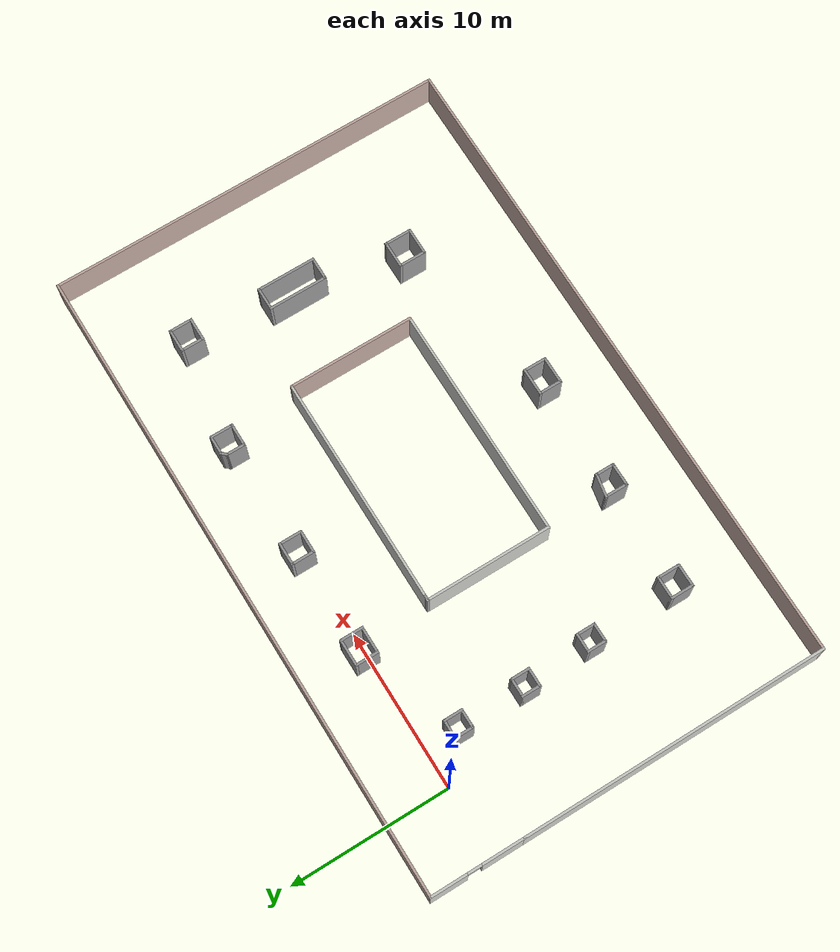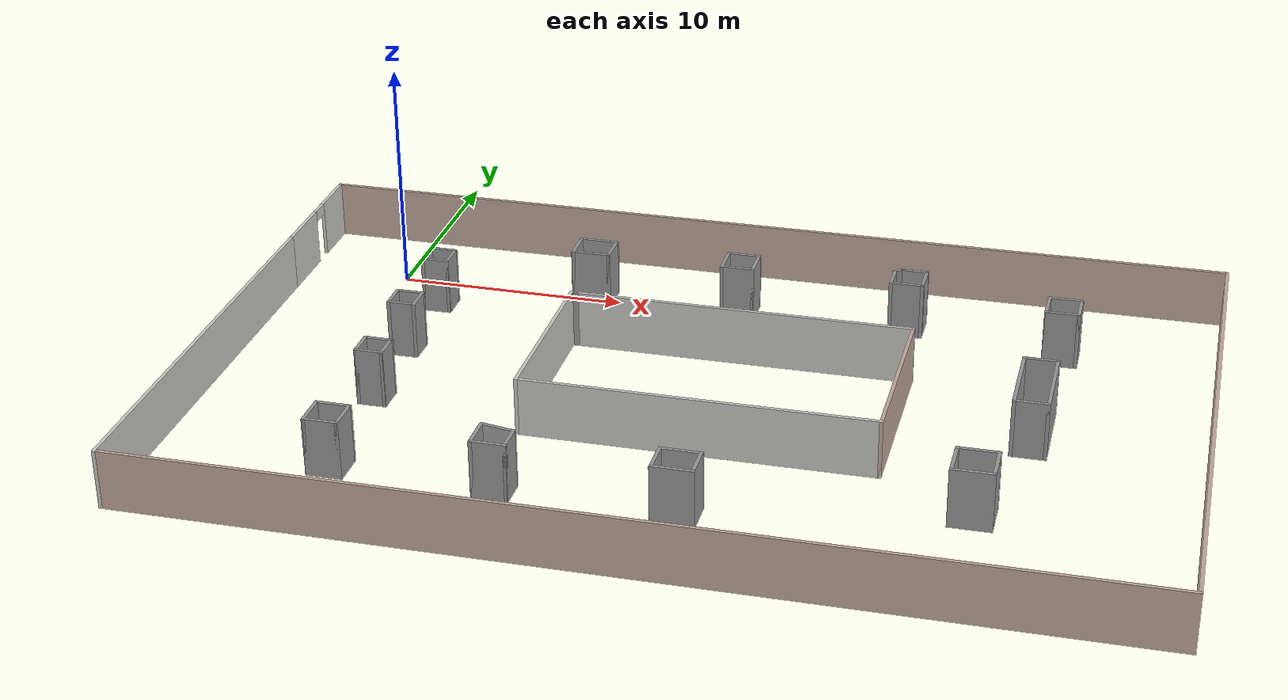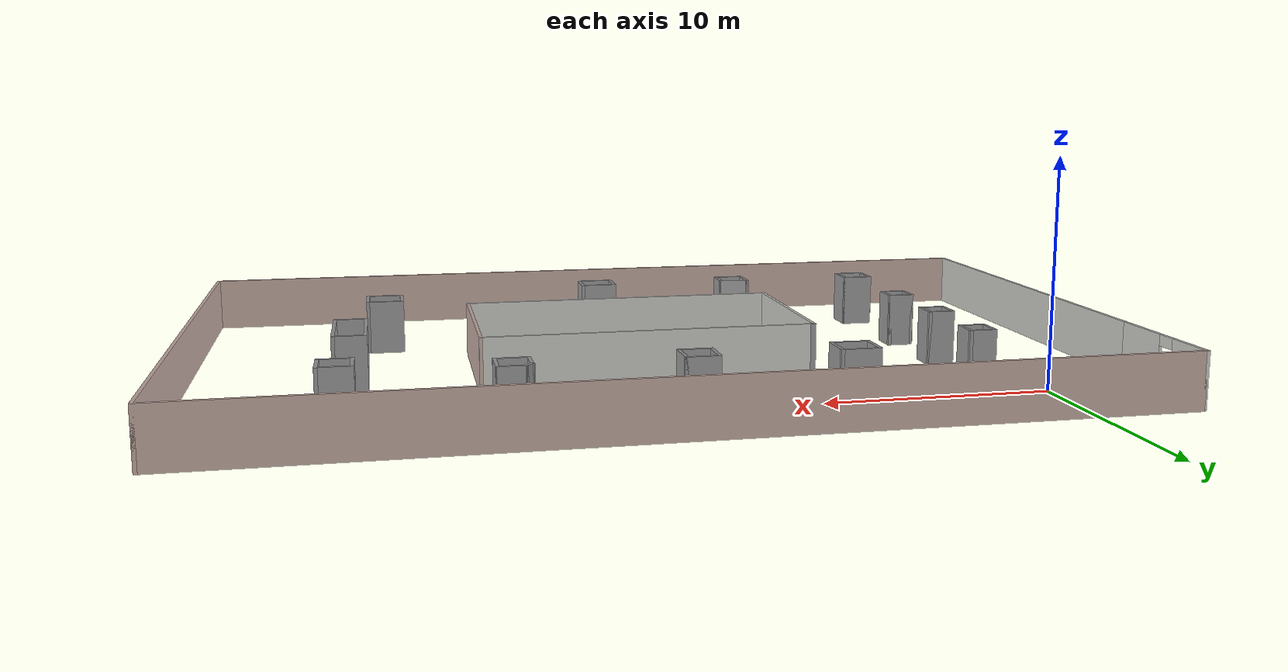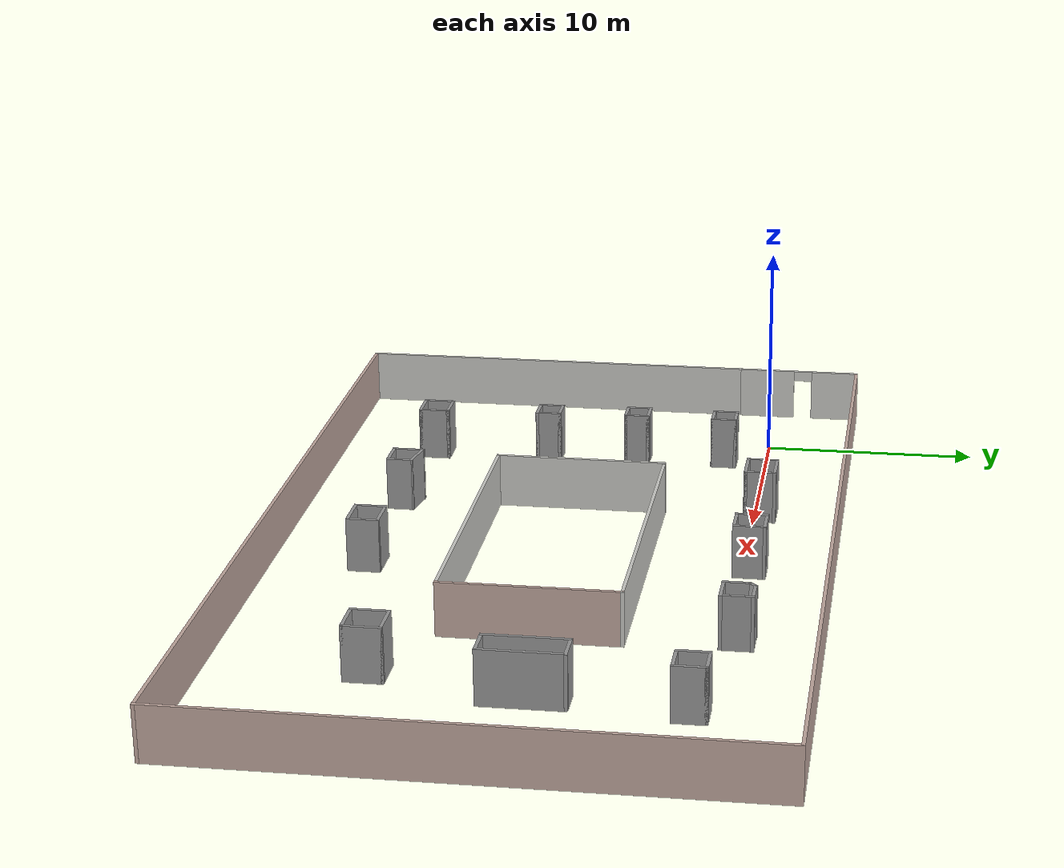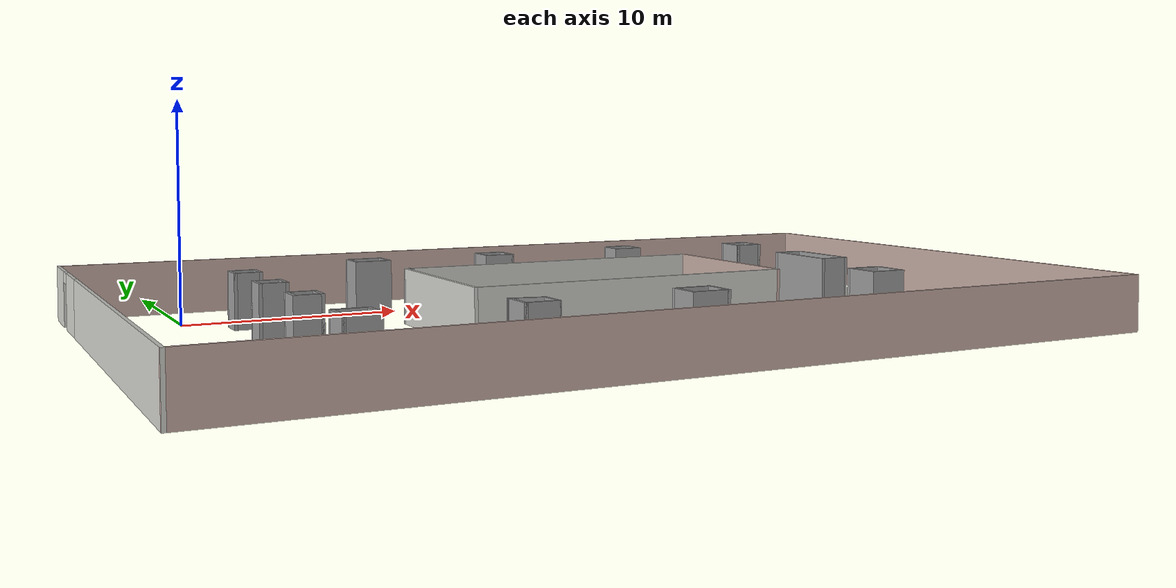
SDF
<?xml version='1.0'?>
<sdf version='1.7'>
  <model name='office'>
    <pose>15.7026 -8.49521 0 0 -0 0</pose>
    <link name='Wall_1'>
      <pose>-20.3 9.625 0 0 -0 1.5708</pose>
      <visual name='Wall_1_Visual_0'>
        <pose>-1.62865 0 1.25 0 -0 0</pose>
        <geometry>
          <box>
            <size>2.7427 0.15 2.5</size>
          </box>
        </geometry>
        <material>
          <script>
            <uri>file://media/materials/scripts/gazebo.material</uri>
            <name>Gazebo/CeilingTiled</name>
          </script>
          <ambient>0.760784 0.662745 0.627451 1</ambient>
        </material>
        <meta>
          <layer>0</layer>
        </meta>
      </visual>
      <collision name='Wall_1_Collision_0'>
        <geometry>
          <box>
            <size>2.7427 0.15 2.5</size>
          </box>
        </geometry>
        <pose>-1.62865 0 1.25 0 -0 0</pose>
      </collision>
      <visual name='Wall_1_Visual_1'>
        <pose>1.82135 0 1.25 0 -0 0</pose>
        <geometry>
          <box>
            <size>2.3573 0.15 2.5</size>
          </box>
        </geometry>
        <material>
          <script>
            <uri>file://media/materials/scripts/gazebo.material</uri>
            <name>Gazebo/CeilingTiled</name>
          </script>
          <ambient>0.760784 0.662745 0.627451 1</ambient>
        </material>
        <meta>
          <layer>0</layer>
        </meta>
      </visual>
      <collision name='Wall_1_Collision_1'>
        <geometry>
          <box>
            <size>2.3573 0.15 2.5</size>
          </box>
        </geometry>
        <pose>1.82135 0 1.25 0 -0 0</pose>
      </collision>
      <visual name='Wall_1_Visual_2'>
        <pose>0.192696 0 2.25 0 -0 0</pose>
        <geometry>
          <box>
            <size>0.9 0.15 0.5</size>
          </box>
        </geometry>
        <material>
          <script>
            <uri>file://media/materials/scripts/gazebo.material</uri>
            <name>Gazebo/CeilingTiled</name>
          </script>
          <ambient>0.760784 0.662745 0.627451 1</ambient>
        </material>
        <meta>
          <layer>0</layer>
        </meta>
      </visual>
      <collision name='Wall_1_Collision_2'>
        <geometry>
          <box>
            <size>0.9 0.15 0.5</size>
          </box>
        </geometry>
        <pose>0.192696 0 2.25 0 -0 0</pose>
      </collision>
    </link>
    <link name='Wall_11'>
      <collision name='Wall_11_Collision'>
        <geometry>
          <box>
            <size>8 0.15 2.5</size>
          </box>
        </geometry>
        <pose>0 0 1.25 0 -0 0</pose>
      </collision>
      <visual name='Wall_11_Visual'>
        <pose>0 0 1.25 0 -0 0</pose>
        <geometry>
          <box>
            <size>8 0.15 2.5</size>
          </box>
        </geometry>
        <material>
          <script>
            <uri>file://media/materials/scripts/gazebo.material</uri>
            <name>Gazebo/CeilingTiled</name>
          </script>
          <ambient>0.760784 0.662745 0.627451 1</ambient>
        </material>
        <meta>
          <layer>0</layer>
        </meta>
      </visual>
      <pose>-6.66973 0.343106 0 0 -0 -1.5708</pose>
    </link>
    <link name='Wall_12'>
      <collision name='Wall_12_Collision'>
        <geometry>
          <box>
            <size>14.75 0.15 2.5</size>
          </box>
        </geometry>
        <pose>0 0 1.25 0 -0 0</pose>
      </collision>
      <visual name='Wall_12_Visual'>
        <pose>0 0 1.25 0 -0 0</pose>
        <geometry>
          <box>
            <size>14.75 0.15 2.5</size>
          </box>
        </geometry>
        <material>
          <script>
            <uri>file://media/materials/scripts/gazebo.material</uri>
            <name>Gazebo/CeilingTiled</name>
          </script>
          <ambient>0.760784 0.662745 0.627451 1</ambient>
        </material>
        <meta>
          <layer>0</layer>
        </meta>
      </visual>
      <pose>0.630268 -3.58189 0 0 -0 0</pose>
    </link>
    <link name='Wall_13'>
      <collision name='Wall_13_Collision'>
        <geometry>
          <box>
            <size>8 0.15 2.5</size>
          </box>
        </geometry>
        <pose>0 0 1.25 0 -0 0</pose>
      </collision>
      <visual name='Wall_13_Visual'>
        <pose>0 0 1.25 0 -0 0</pose>
        <geometry>
          <box>
            <size>8 0.15 2.5</size>
          </box>
        </geometry>
        <material>
          <script>
            <uri>file://media/materials/scripts/gazebo.material</uri>
            <name>Gazebo/Grey</name>
          </script>
          <ambient>0.760784 0.662745 0.627451 1</ambient>
        </material>
        <meta>
          <layer>0</layer>
        </meta>
      </visual>
      <pose>7.93027 0.343106 0 0 -0 1.5708</pose>
    </link>
    <link name='Wall_14'>
      <collision name='Wall_14_Collision'>
        <geometry>
          <box>
            <size>14.5 0.15 2.5</size>
          </box>
        </geometry>
        <pose>0 0 1.25 0 -0 0</pose>
      </collision>
      <visual name='Wall_14_Visual'>
        <pose>0 0 1.25 0 -0 0</pose>
        <geometry>
          <box>
            <size>14.5 0.15 2.5</size>
          </box>
        </geometry>
        <material>
          <script>
            <uri>file://media/materials/scripts/gazebo.material</uri>
            <name>Gazebo/CeilingTiled</name>
          </script>
          <ambient>0.760784 0.662745 0.627451 1</ambient>
        </material>
        <meta>
          <layer>0</layer>
        </meta>
      </visual>
      <pose>0.755268 4.26811 0 0 -0 3.14159</pose>
    </link>
    <link name='Wall_15'>
      <collision name='Wall_15_Collision'>
        <geometry>
          <box>
            <size>0.4 0.15 2.5</size>
          </box>
        </geometry>
        <pose>0 0 1.25 0 -0 0</pose>
      </collision>
      <visual name='Wall_15_Visual'>
        <pose>0 0 1.25 0 -0 0</pose>
        <geometry>
          <box>
            <size>0.4 0.15 2.5</size>
          </box>
        </geometry>
        <material>
          <script>
            <uri>file://media/materials/scripts/gazebo.material</uri>
            <name>Gazebo/Grey</name>
          </script>
          <ambient>1 1 1 1</ambient>
        </material>
        <meta>
          <layer>0</layer>
        </meta>
      </visual>
      <pose>-6.54473 4.26811 0 0 -0 -3.14159</pose>
    </link>
    <link name='Wall_27'>
      <collision name='Wall_27_Collision'>
        <geometry>
          <box>
            <size>1.25 0.15 2.5</size>
          </box>
        </geometry>
        <pose>0 0 1.25 0 -0 0</pose>
      </collision>
      <visual name='Wall_27_Visual'>
        <pose>0 0 1.25 0 -0 0</pose>
        <geometry>
          <box>
            <size>1.25 0.15 2.5</size>
          </box>
        </geometry>
        <material>
          <script>
            <uri>file://media/materials/scripts/gazebo.material</uri>
            <name>Gazebo/Grey</name>
          </script>
          <ambient>1 1 1 1</ambient>
        </material>
        <meta>
          <layer>0</layer>
        </meta>
      </visual>
      <pose>-13.8871 6.46149 0 0 -0 -1.5708</pose>
    </link>
    <link name='Wall_3'>
      <collision name='Wall_3_Collision'>
        <geometry>
          <box>
            <size>40.75 0.15 2.5</size>
          </box>
        </geometry>
        <pose>0 0 1.25 0 -0 0</pose>
      </collision>
      <visual name='Wall_3_Visual'>
        <pose>0 0 1.25 0 -0 0</pose>
        <geometry>
          <box>
            <size>40.75 0.15 2.5</size>
          </box>
        </geometry>
        <material>
          <script>
            <uri>file://media/materials/scripts/gazebo.material</uri>
            <name>Gazebo/Grey</name>
          </script>
          <ambient>0.760784 0.662745 0.627451 1</ambient>
        </material>
        <meta>
          <layer>0</layer>
        </meta>
      </visual>
      <pose>-0 12.55 0 0 -0 0</pose>
    </link>
    <link name='Wall_31'>
      <collision name='Wall_31_Collision'>
        <geometry>
          <box>
            <size>1.25 0.15 2.5</size>
          </box>
        </geometry>
        <pose>0 0 1.25 0 -0 0</pose>
      </collision>
      <visual name='Wall_31_Visual'>
        <pose>0 0 1.25 0 -0 0</pose>
        <geometry>
          <box>
            <size>1.25 0.15 2.5</size>
          </box>
        </geometry>
        <material>
          <script>
            <uri>file://media/materials/scripts/gazebo.material</uri>
            <name>Gazebo/Grey</name>
          </script>
          <ambient>1 1 1 1</ambient>
        </material>
        <meta>
          <layer>0</layer>
        </meta>
      </visual>
      <pose>-13.3371 5.91149 0 0 -0 0</pose>
    </link>
    <link name='Wall_32'>
      <collision name='Wall_32_Collision'>
        <geometry>
          <box>
            <size>1.25 0.15 2.5</size>
          </box>
        </geometry>
        <pose>0 0 1.25 0 -0 0</pose>
      </collision>
      <visual name='Wall_32_Visual'>
        <pose>0 0 1.25 0 -0 0</pose>
        <geometry>
          <box>
            <size>1.25 0.15 2.5</size>
          </box>
        </geometry>
        <material>
          <script>
            <uri>file://media/materials/scripts/gazebo.material</uri>
            <name>Gazebo/Grey</name>
          </script>
          <ambient>1 1 1 1</ambient>
        </material>
        <meta>
          <layer>0</layer>
        </meta>
      </visual>
      <pose>-12.7871 6.46149 0 0 -0 1.5708</pose>
    </link>
    <link name='Wall_33'>
      <collision name='Wall_33_Collision'>
        <geometry>
          <box>
            <size>1.25 0.15 2.5</size>
          </box>
        </geometry>
        <pose>0 0 1.25 0 -0 0</pose>
      </collision>
      <visual name='Wall_33_Visual'>
        <pose>0 0 1.25 0 -0 0</pose>
        <geometry>
          <box>
            <size>1.25 0.15 2.5</size>
          </box>
        </geometry>
        <material>
          <script>
            <uri>file://media/materials/scripts/gazebo.material</uri>
            <name>Gazebo/Grey</name>
          </script>
          <ambient>1 1 1 1</ambient>
        </material>
        <meta>
          <layer>0</layer>
        </meta>
      </visual>
      <pose>-13.3371 7.01149 0 0 -0 3.14159</pose>
    </link>
    <link name='Wall_35'>
      <collision name='Wall_35_Collision'>
        <geometry>
          <box>
            <size>1.25 0.15 2.5</size>
          </box>
        </geometry>
        <pose>0 0 1.25 0 -0 0</pose>
      </collision>
      <visual name='Wall_35_Visual'>
        <pose>0 0 1.25 0 -0 0</pose>
        <geometry>
          <box>
            <size>1.25 0.15 2.5</size>
          </box>
        </geometry>
        <material>
          <script>
            <uri>file://media/materials/scripts/gazebo.material</uri>
            <name>Gazebo/Grey</name>
          </script>
          <ambient>1 1 1 1</ambient>
        </material>
        <meta>
          <layer>0</layer>
        </meta>
      </visual>
      <pose>-13.8889 2.18113 0 0 -0 -1.5708</pose>
    </link>
    <link name='Wall_36'>
      <collision name='Wall_36_Collision'>
        <geometry>
          <box>
            <size>1.25 0.15 2.5</size>
          </box>
        </geometry>
        <pose>0 0 1.25 0 -0 0</pose>
      </collision>
      <visual name='Wall_36_Visual'>
        <pose>0 0 1.25 0 -0 0</pose>
        <geometry>
          <box>
            <size>1.25 0.15 2.5</size>
          </box>
        </geometry>
        <material>
          <script>
            <uri>file://media/materials/scripts/gazebo.material</uri>
            <name>Gazebo/Grey</name>
          </script>
          <ambient>1 1 1 1</ambient>
        </material>
        <meta>
          <layer>0</layer>
        </meta>
      </visual>
      <pose>-13.3389 1.63114 0 0 -0 0</pose>
    </link>
    <link name='Wall_37'>
      <collision name='Wall_37_Collision'>
        <geometry>
          <box>
            <size>1.25 0.15 2.5</size>
          </box>
        </geometry>
        <pose>0 0 1.25 0 -0 0</pose>
      </collision>
      <visual name='Wall_37_Visual'>
        <pose>0 0 1.25 0 -0 0</pose>
        <geometry>
          <box>
            <size>1.25 0.15 2.5</size>
          </box>
        </geometry>
        <material>
          <script>
            <uri>file://media/materials/scripts/gazebo.material</uri>
            <name>Gazebo/Grey</name>
          </script>
          <ambient>1 1 1 1</ambient>
        </material>
        <meta>
          <layer>0</layer>
        </meta>
      </visual>
      <pose>-12.7889 2.18113 0 0 -0 1.5708</pose>
    </link>
    <link name='Wall_38'>
      <collision name='Wall_38_Collision'>
        <geometry>
          <box>
            <size>1.25 0.15 2.5</size>
          </box>
        </geometry>
        <pose>0 0 1.25 0 -0 0</pose>
      </collision>
      <visual name='Wall_38_Visual'>
        <pose>0 0 1.25 0 -0 0</pose>
        <geometry>
          <box>
            <size>1.25 0.15 2.5</size>
          </box>
        </geometry>
        <material>
          <script>
            <uri>file://media/materials/scripts/gazebo.material</uri>
            <name>Gazebo/Grey</name>
          </script>
          <ambient>1 1 1 1</ambient>
        </material>
        <meta>
          <layer>0</layer>
        </meta>
      </visual>
      <pose>-13.3389 2.73113 0 0 -0 3.14159</pose>
    </link>
    <link name='Wall_40'>
      <collision name='Wall_40_Collision'>
        <geometry>
          <box>
            <size>1.25 0.15 2.5</size>
          </box>
        </geometry>
        <pose>0 0 1.25 0 -0 0</pose>
      </collision>
      <visual name='Wall_40_Visual'>
        <pose>0 0 1.25 0 -0 0</pose>
        <geometry>
          <box>
            <size>1.25 0.15 2.5</size>
          </box>
        </geometry>
        <material>
          <script>
            <uri>file://media/materials/scripts/gazebo.material</uri>
            <name>Gazebo/Grey</name>
          </script>
          <ambient>1 1 1 1</ambient>
        </material>
        <meta>
          <layer>0</layer>
        </meta>
      </visual>
      <pose>-13.6968 -2.17289 0 0 -0 -1.5708</pose>
    </link>
    <link name='Wall_41'>
      <collision name='Wall_41_Collision'>
        <geometry>
          <box>
            <size>1.25 0.15 2.5</size>
          </box>
        </geometry>
        <pose>0 0 1.25 0 -0 0</pose>
      </collision>
      <visual name='Wall_41_Visual'>
        <pose>0 0 1.25 0 -0 0</pose>
        <geometry>
          <box>
            <size>1.25 0.15 2.5</size>
          </box>
        </geometry>
        <material>
          <script>
            <uri>file://media/materials/scripts/gazebo.material</uri>
            <name>Gazebo/Grey</name>
          </script>
          <ambient>1 1 1 1</ambient>
        </material>
        <meta>
          <layer>0</layer>
        </meta>
      </visual>
      <pose>-13.1468 -2.72289 0 0 -0 0</pose>
    </link>
    <link name='Wall_42'>
      <collision name='Wall_42_Collision'>
        <geometry>
          <box>
            <size>1.25 0.15 2.5</size>
          </box>
        </geometry>
        <pose>0 0 1.25 0 -0 0</pose>
      </collision>
      <visual name='Wall_42_Visual'>
        <pose>0 0 1.25 0 -0 0</pose>
        <geometry>
          <box>
            <size>1.25 0.15 2.5</size>
          </box>
        </geometry>
        <material>
          <script>
            <uri>file://media/materials/scripts/gazebo.material</uri>
            <name>Gazebo/Grey</name>
          </script>
          <ambient>1 1 1 1</ambient>
        </material>
        <meta>
          <layer>0</layer>
        </meta>
      </visual>
      <pose>-12.5968 -2.17289 0 0 -0 1.5708</pose>
    </link>
    <link name='Wall_43'>
      <collision name='Wall_43_Collision'>
        <geometry>
          <box>
            <size>1.25 0.15 2.5</size>
          </box>
        </geometry>
        <pose>0 0 1.25 0 -0 0</pose>
      </collision>
      <visual name='Wall_43_Visual'>
        <pose>0 0 1.25 0 -0 0</pose>
        <geometry>
          <box>
            <size>1.25 0.15 2.5</size>
          </box>
        </geometry>
        <material>
          <script>
            <uri>file://media/materials/scripts/gazebo.material</uri>
            <name>Gazebo/Grey</name>
          </script>
          <ambient>1 1 1 1</ambient>
        </material>
        <meta>
          <layer>0</layer>
        </meta>
      </visual>
      <pose>-13.1468 -1.62289 0 0 -0 3.14159</pose>
    </link>
    <link name='Wall_45'>
      <collision name='Wall_45_Collision'>
        <geometry>
          <box>
            <size>1.5 0.15 2.5</size>
          </box>
        </geometry>
        <pose>0 0 1.25 0 -0 0</pose>
      </collision>
      <visual name='Wall_45_Visual'>
        <pose>0 0 1.25 0 -0 0</pose>
        <geometry>
          <box>
            <size>1.5 0.15 2.5</size>
          </box>
        </geometry>
        <material>
          <script>
            <uri>file://media/materials/scripts/gazebo.material</uri>
            <name>Gazebo/Grey</name>
          </script>
          <ambient>1 1 1 1</ambient>
        </material>
        <meta>
          <layer>0</layer>
        </meta>
      </visual>
      <pose>-13.6186 -7.81678 0 0 -0 -1.5708</pose>
    </link>
    <link name='Wall_46'>
      <collision name='Wall_46_Collision'>
        <geometry>
          <box>
            <size>1.5 0.15 2.5</size>
          </box>
        </geometry>
        <pose>0 0 1.25 0 -0 0</pose>
      </collision>
      <visual name='Wall_46_Visual'>
        <pose>0 0 1.25 0 -0 0</pose>
        <geometry>
          <box>
            <size>1.5 0.15 2.5</size>
          </box>
        </geometry>
        <material>
          <script>
            <uri>file://media/materials/scripts/gazebo.material</uri>
            <name>Gazebo/Grey</name>
          </script>
          <ambient>1 1 1 1</ambient>
        </material>
        <meta>
          <layer>0</layer>
        </meta>
      </visual>
      <pose>-12.9436 -8.49178 0 0 -0 0</pose>
    </link>
    <link name='Wall_47'>
      <collision name='Wall_47_Collision'>
        <geometry>
          <box>
            <size>1.5 0.15 2.5</size>
          </box>
        </geometry>
        <pose>0 0 1.25 0 -0 0</pose>
      </collision>
      <visual name='Wall_47_Visual'>
        <pose>0 0 1.25 0 -0 0</pose>
        <geometry>
          <box>
            <size>1.5 0.15 2.5</size>
          </box>
        </geometry>
        <material>
          <script>
            <uri>file://media/materials/scripts/gazebo.material</uri>
            <name>Gazebo/Grey</name>
          </script>
          <ambient>1 1 1 1</ambient>
        </material>
        <meta>
          <layer>0</layer>
        </meta>
      </visual>
      <pose>-12.2686 -7.81678 0 0 -0 1.5708</pose>
    </link>
    <link name='Wall_48'>
      <collision name='Wall_48_Collision'>
        <geometry>
          <box>
            <size>1.5 0.15 2.5</size>
          </box>
        </geometry>
        <pose>0 0 1.25 0 -0 0</pose>
      </collision>
      <visual name='Wall_48_Visual'>
        <pose>0 0 1.25 0 -0 0</pose>
        <geometry>
          <box>
            <size>1.5 0.15 2.5</size>
          </box>
        </geometry>
        <material>
          <script>
            <uri>file://media/materials/scripts/gazebo.material</uri>
            <name>Gazebo/Grey</name>
          </script>
          <ambient>1 1 1 1</ambient>
        </material>
        <meta>
          <layer>0</layer>
        </meta>
      </visual>
      <pose>-12.9436 -7.14178 0 0 -0 3.14159</pose>
    </link>
    <link name='Wall_5'>
      <collision name='Wall_5_Collision'>
        <geometry>
          <box>
            <size>25.25 0.15 2.5</size>
          </box>
        </geometry>
        <pose>0 0 1.25 0 -0 0</pose>
      </collision>
      <visual name='Wall_5_Visual'>
        <pose>0 0 1.25 0 -0 0</pose>
        <geometry>
          <box>
            <size>25.25 0.15 2.5</size>
          </box>
        </geometry>
        <material>
          <script>
            <uri>file://media/materials/scripts/gazebo.material</uri>
            <name>Gazebo/Grey</name>
          </script>
          <ambient>0.760784 0.662745 0.627451 1</ambient>
        </material>
        <meta>
          <layer>0</layer>
        </meta>
      </visual>
      <pose>20.3 0 0 0 -0 -1.5708</pose>
    </link>
    <link name='Wall_50'>
      <collision name='Wall_50_Collision'>
        <geometry>
          <box>
            <size>1.5 0.15 2.5</size>
          </box>
        </geometry>
        <pose>0 0 1.25 0 -0 0</pose>
      </collision>
      <visual name='Wall_50_Visual'>
        <pose>0 0 1.25 0 -0 0</pose>
        <geometry>
          <box>
            <size>1.5 0.15 2.5</size>
          </box>
        </geometry>
        <material>
          <script>
            <uri>file://media/materials/scripts/gazebo.material</uri>
            <name>Gazebo/Grey</name>
          </script>
          <ambient>1 1 1 1</ambient>
        </material>
        <meta>
          <layer>0</layer>
        </meta>
      </visual>
      <pose>-7.70274 8.78582 0 0 -0 -1.5708</pose>
    </link>
    <link name='Wall_51'>
      <collision name='Wall_51_Collision'>
        <geometry>
          <box>
            <size>1.75 0.15 2.5</size>
          </box>
        </geometry>
        <pose>0 0 1.25 0 -0 0</pose>
      </collision>
      <visual name='Wall_51_Visual'>
        <pose>0 0 1.25 0 -0 0</pose>
        <geometry>
          <box>
            <size>1.75 0.15 2.5</size>
          </box>
        </geometry>
        <material>
          <script>
            <uri>file://media/materials/scripts/gazebo.material</uri>
            <name>Gazebo/Grey</name>
          </script>
          <ambient>1 1 1 1</ambient>
        </material>
        <meta>
          <layer>0</layer>
        </meta>
      </visual>
      <pose>-6.90274 8.11082 0 0 -0 0</pose>
    </link>
    <link name='Wall_52'>
      <collision name='Wall_52_Collision'>
        <geometry>
          <box>
            <size>1.5 0.15 2.5</size>
          </box>
        </geometry>
        <pose>0 0 1.25 0 -0 0</pose>
      </collision>
      <visual name='Wall_52_Visual'>
        <pose>0 0 1.25 0 -0 0</pose>
        <geometry>
          <box>
            <size>1.5 0.15 2.5</size>
          </box>
        </geometry>
        <material>
          <script>
            <uri>file://media/materials/scripts/gazebo.material</uri>
            <name>Gazebo/Grey</name>
          </script>
          <ambient>1 1 1 1</ambient>
        </material>
        <meta>
          <layer>0</layer>
        </meta>
      </visual>
      <pose>-6.10274 8.78582 0 0 -0 1.5708</pose>
    </link>
    <link name='Wall_53'>
      <collision name='Wall_53_Collision'>
        <geometry>
          <box>
            <size>1.75 0.15 2.5</size>
          </box>
        </geometry>
        <pose>0 0 1.25 0 -0 0</pose>
      </collision>
      <visual name='Wall_53_Visual'>
        <pose>0 0 1.25 0 -0 0</pose>
        <geometry>
          <box>
            <size>1.75 0.15 2.5</size>
          </box>
        </geometry>
        <material>
          <script>
            <uri>file://media/materials/scripts/gazebo.material</uri>
            <name>Gazebo/Grey</name>
          </script>
          <ambient>1 1 1 1</ambient>
        </material>
        <meta>
          <layer>0</layer>
        </meta>
      </visual>
      <pose>-6.90274 9.46082 0 0 -0 3.14159</pose>
    </link>
    <link name='Wall_55'>
      <collision name='Wall_55_Collision'>
        <geometry>
          <box>
            <size>1.5 0.15 2.5</size>
          </box>
        </geometry>
        <pose>0 0 1.25 0 -0 0</pose>
      </collision>
      <visual name='Wall_55_Visual'>
        <pose>0 0 1.25 0 -0 0</pose>
        <geometry>
          <box>
            <size>1.5 0.15 2.5</size>
          </box>
        </geometry>
        <material>
          <script>
            <uri>file://media/materials/scripts/gazebo.material</uri>
            <name>Gazebo/Grey</name>
          </script>
          <ambient>1 1 1 1</ambient>
        </material>
        <meta>
          <layer>0</layer>
        </meta>
      </visual>
      <pose>-6.87579 -7.94401 0 0 -0 -1.5708</pose>
    </link>
    <link name='Wall_56'>
      <collision name='Wall_56_Collision'>
        <geometry>
          <box>
            <size>1.5 0.15 2.5</size>
          </box>
        </geometry>
        <pose>0 0 1.25 0 -0 0</pose>
      </collision>
      <visual name='Wall_56_Visual'>
        <pose>0 0 1.25 0 -0 0</pose>
        <geometry>
          <box>
            <size>1.5 0.15 2.5</size>
          </box>
        </geometry>
        <material>
          <script>
            <uri>file://media/materials/scripts/gazebo.material</uri>
            <name>Gazebo/Grey</name>
          </script>
          <ambient>1 1 1 1</ambient>
        </material>
        <meta>
          <layer>0</layer>
        </meta>
      </visual>
      <pose>-6.20079 -8.61901 0 0 -0 0</pose>
    </link>
    <link name='Wall_57'>
      <collision name='Wall_57_Collision'>
        <geometry>
          <box>
            <size>1.25 0.15 2.5</size>
          </box>
        </geometry>
        <pose>0 0 1.25 0 -0 0</pose>
      </collision>
      <visual name='Wall_57_Visual'>
        <pose>0 0 1.25 0 -0 0</pose>
        <geometry>
          <box>
            <size>1.25 0.15 2.5</size>
          </box>
        </geometry>
        <material>
          <script>
            <uri>file://media/materials/scripts/gazebo.material</uri>
            <name>Gazebo/Grey</name>
          </script>
          <ambient>1 1 1 1</ambient>
        </material>
        <meta>
          <layer>0</layer>
        </meta>
      </visual>
      <pose>-5.52579 -8.06901 0 0 -0 1.5708</pose>
    </link>
    <link name='Wall_58'>
      <collision name='Wall_58_Collision'>
        <geometry>
          <box>
            <size>1.52295 0.15 2.5</size>
          </box>
        </geometry>
        <pose>0 0 1.25 0 -0 0</pose>
      </collision>
      <visual name='Wall_58_Visual'>
        <pose>0 0 1.25 0 -0 0</pose>
        <geometry>
          <box>
            <size>1.52295 0.15 2.5</size>
          </box>
        </geometry>
        <material>
          <script>
            <uri>file://media/materials/scripts/gazebo.material</uri>
            <name>Gazebo/Grey</name>
          </script>
          <ambient>1 1 1 1</ambient>
        </material>
        <meta>
          <layer>0</layer>
        </meta>
      </visual>
      <pose>-6.20079 -7.39401 0 0 -0 2.95848</pose>
    </link>
    <link name='Wall_6'>
      <collision name='Wall_6_Collision'>
        <geometry>
          <box>
            <size>40.75 0.15 2.5</size>
          </box>
        </geometry>
        <pose>0 0 1.25 0 -0 0</pose>
      </collision>
      <visual name='Wall_6_Visual'>
        <pose>0 0 1.25 0 -0 0</pose>
        <geometry>
          <box>
            <size>40.75 0.15 2.5</size>
          </box>
        </geometry>
        <material>
          <script>
            <uri>file://media/materials/scripts/gazebo.material</uri>
            <name>Gazebo/Grey</name>
          </script>
          <ambient>0.760784 0.662745 0.627451 1</ambient>
        </material>
        <meta>
          <layer>0</layer>
        </meta>
      </visual>
      <pose>-0 -12.55 0 0 -0 3.14159</pose>
    </link>
    <link name='Wall_60'>
      <collision name='Wall_60_Collision'>
        <geometry>
          <box>
            <size>1.5 0.15 2.5</size>
          </box>
        </geometry>
        <pose>0 0 1.25 0 -0 0</pose>
      </collision>
      <visual name='Wall_60_Visual'>
        <pose>0 0 1.25 0 -0 0</pose>
        <geometry>
          <box>
            <size>1.5 0.15 2.5</size>
          </box>
        </geometry>
        <material>
          <script>
            <uri>file://media/materials/scripts/gazebo.material</uri>
            <name>Gazebo/Grey</name>
          </script>
          <ambient>1 1 1 1</ambient>
        </material>
        <meta>
          <layer>0</layer>
        </meta>
      </visual>
      <pose>-1.02353 8.84943 0 0 -0 -1.5708</pose>
    </link>
    <link name='Wall_61'>
      <collision name='Wall_61_Collision'>
        <geometry>
          <box>
            <size>1.5 0.15 2.5</size>
          </box>
        </geometry>
        <pose>0 0 1.25 0 -0 0</pose>
      </collision>
      <visual name='Wall_61_Visual'>
        <pose>0 0 1.25 0 -0 0</pose>
        <geometry>
          <box>
            <size>1.5 0.15 2.5</size>
          </box>
        </geometry>
        <material>
          <script>
            <uri>file://media/materials/scripts/gazebo.material</uri>
            <name>Gazebo/Grey</name>
          </script>
          <ambient>1 1 1 1</ambient>
        </material>
        <meta>
          <layer>0</layer>
        </meta>
      </visual>
      <pose>-0.34853 8.17443 0 0 -0 0</pose>
    </link>
    <link name='Wall_62'>
      <collision name='Wall_62_Collision'>
        <geometry>
          <box>
            <size>1.5 0.15 2.5</size>
          </box>
        </geometry>
        <pose>0 0 1.25 0 -0 0</pose>
      </collision>
      <visual name='Wall_62_Visual'>
        <pose>0 0 1.25 0 -0 0</pose>
        <geometry>
          <box>
            <size>1.5 0.15 2.5</size>
          </box>
        </geometry>
        <material>
          <script>
            <uri>file://media/materials/scripts/gazebo.material</uri>
            <name>Gazebo/Grey</name>
          </script>
          <ambient>1 1 1 1</ambient>
        </material>
        <meta>
          <layer>0</layer>
        </meta>
      </visual>
      <pose>0.326469 8.84943 0 0 -0 1.5708</pose>
    </link>
    <link name='Wall_63'>
      <collision name='Wall_63_Collision'>
        <geometry>
          <box>
            <size>1.5 0.15 2.5</size>
          </box>
        </geometry>
        <pose>0 0 1.25 0 -0 0</pose>
      </collision>
      <visual name='Wall_63_Visual'>
        <pose>0 0 1.25 0 -0 0</pose>
        <geometry>
          <box>
            <size>1.5 0.15 2.5</size>
          </box>
        </geometry>
        <material>
          <script>
            <uri>file://media/materials/scripts/gazebo.material</uri>
            <name>Gazebo/Grey</name>
          </script>
          <ambient>1 1 1 1</ambient>
        </material>
        <meta>
          <layer>0</layer>
        </meta>
      </visual>
      <pose>-0.34853 9.52443 0 0 -0 3.14159</pose>
    </link>
    <link name='Wall_65'>
      <collision name='Wall_65_Collision'>
        <geometry>
          <box>
            <size>1.5 0.15 2.5</size>
          </box>
        </geometry>
        <pose>0 0 1.25 0 -0 0</pose>
      </collision>
      <visual name='Wall_65_Visual'>
        <pose>0 0 1.25 0 -0 0</pose>
        <geometry>
          <box>
            <size>1.5 0.15 2.5</size>
          </box>
        </geometry>
        <material>
          <script>
            <uri>file://media/materials/scripts/gazebo.material</uri>
            <name>Gazebo/Grey</name>
          </script>
          <ambient>1 1 1 1</ambient>
        </material>
        <meta>
          <layer>0</layer>
        </meta>
      </visual>
      <pose>0.185088 -8.13484 0 0 -0 -1.5708</pose>
    </link>
    <link name='Wall_66'>
      <collision name='Wall_66_Collision'>
        <geometry>
          <box>
            <size>1.75 0.15 2.5</size>
          </box>
        </geometry>
        <pose>0 0 1.25 0 -0 0</pose>
      </collision>
      <visual name='Wall_66_Visual'>
        <pose>0 0 1.25 0 -0 0</pose>
        <geometry>
          <box>
            <size>1.75 0.15 2.5</size>
          </box>
        </geometry>
        <material>
          <script>
            <uri>file://media/materials/scripts/gazebo.material</uri>
            <name>Gazebo/Grey</name>
          </script>
          <ambient>1 1 1 1</ambient>
        </material>
        <meta>
          <layer>0</layer>
        </meta>
      </visual>
      <pose>0.985088 -8.80984 0 0 -0 0</pose>
    </link>
    <link name='Wall_67'>
      <collision name='Wall_67_Collision'>
        <geometry>
          <box>
            <size>1.5 0.15 2.5</size>
          </box>
        </geometry>
        <pose>0 0 1.25 0 -0 0</pose>
      </collision>
      <visual name='Wall_67_Visual'>
        <pose>0 0 1.25 0 -0 0</pose>
        <geometry>
          <box>
            <size>1.5 0.15 2.5</size>
          </box>
        </geometry>
        <material>
          <script>
            <uri>file://media/materials/scripts/gazebo.material</uri>
            <name>Gazebo/Grey</name>
          </script>
          <ambient>1 1 1 1</ambient>
        </material>
        <meta>
          <layer>0</layer>
        </meta>
      </visual>
      <pose>1.78509 -8.13484 0 0 -0 1.5708</pose>
    </link>
    <link name='Wall_68'>
      <collision name='Wall_68_Collision'>
        <geometry>
          <box>
            <size>1.75 0.15 2.5</size>
          </box>
        </geometry>
        <pose>0 0 1.25 0 -0 0</pose>
      </collision>
      <visual name='Wall_68_Visual'>
        <pose>0 0 1.25 0 -0 0</pose>
        <geometry>
          <box>
            <size>1.75 0.15 2.5</size>
          </box>
        </geometry>
        <material>
          <script>
            <uri>file://media/materials/scripts/gazebo.material</uri>
            <name>Gazebo/Grey</name>
          </script>
          <ambient>1 1 1 1</ambient>
        </material>
        <meta>
          <layer>0</layer>
        </meta>
      </visual>
      <pose>0.985088 -7.45984 0 0 -0 3.14159</pose>
    </link>
    <link name='Wall_7'>
      <collision name='Wall_7_Collision'>
        <geometry>
          <box>
            <size>19.4 0.15 2.5</size>
          </box>
        </geometry>
        <pose>0 0 1.25 0 -0 0</pose>
      </collision>
      <visual name='Wall_7_Visual'>
        <pose>0 0 1.25 0 -0 0</pose>
        <geometry>
          <box>
            <size>19.4 0.15 2.5</size>
          </box>
        </geometry>
        <material>
          <script>
            <uri>file://media/materials/scripts/gazebo.material</uri>
            <name>Gazebo/CeilingTiled</name>
          </script>
          <ambient>0.760784 0.662745 0.627451 1</ambient>
        </material>
        <meta>
          <layer>0</layer>
        </meta>
      </visual>
      <pose>-20.3 -2.925 0 0 -0 1.5708</pose>
    </link>
    <link name='Wall_70'>
      <collision name='Wall_70_Collision'>
        <geometry>
          <box>
            <size>1.25 0.15 2.5</size>
          </box>
        </geometry>
        <pose>0 0 1.25 0 -0 0</pose>
      </collision>
      <visual name='Wall_70_Visual'>
        <pose>0 0 1.25 0 -0 0</pose>
        <geometry>
          <box>
            <size>1.25 0.15 2.5</size>
          </box>
        </geometry>
        <material>
          <script>
            <uri>file://media/materials/scripts/gazebo.material</uri>
            <name>Gazebo/Grey</name>
          </script>
          <ambient>1 1 1 1</ambient>
        </material>
        <meta>
          <layer>0</layer>
        </meta>
      </visual>
      <pose>6.3554 8.84721 0 0 -0 -1.5708</pose>
    </link>
    <link name='Wall_71'>
      <collision name='Wall_71_Collision'>
        <geometry>
          <box>
            <size>1.5 0.15 2.5</size>
          </box>
        </geometry>
        <pose>0 0 1.25 0 -0 0</pose>
      </collision>
      <visual name='Wall_71_Visual'>
        <pose>0 0 1.25 0 -0 0</pose>
        <geometry>
          <box>
            <size>1.5 0.15 2.5</size>
          </box>
        </geometry>
        <material>
          <script>
            <uri>file://media/materials/scripts/gazebo.material</uri>
            <name>Gazebo/Grey</name>
          </script>
          <ambient>1 1 1 1</ambient>
        </material>
        <meta>
          <layer>0</layer>
        </meta>
      </visual>
      <pose>7.03041 8.29721 0 0 -0 0</pose>
    </link>
    <link name='Wall_72'>
      <collision name='Wall_72_Collision'>
        <geometry>
          <box>
            <size>1.5 0.15 2.5</size>
          </box>
        </geometry>
        <pose>0 0 1.25 0 -0 0</pose>
      </collision>
      <visual name='Wall_72_Visual'>
        <pose>0 0 1.25 0 -0 0</pose>
        <geometry>
          <box>
            <size>1.5 0.15 2.5</size>
          </box>
        </geometry>
        <material>
          <script>
            <uri>file://media/materials/scripts/gazebo.material</uri>
            <name>Gazebo/Grey</name>
          </script>
          <ambient>1 1 1 1</ambient>
        </material>
        <meta>
          <layer>0</layer>
        </meta>
      </visual>
      <pose>7.7054 8.97221 0 0 -0 1.5708</pose>
    </link>
    <link name='Wall_73'>
      <collision name='Wall_73_Collision'>
        <geometry>
          <box>
            <size>1.25 0.15 2.5</size>
          </box>
        </geometry>
        <pose>0 0 1.25 0 -0 0</pose>
      </collision>
      <visual name='Wall_73_Visual'>
        <pose>0 0 1.25 0 -0 0</pose>
        <geometry>
          <box>
            <size>1.25 0.15 2.5</size>
          </box>
        </geometry>
        <material>
          <script>
            <uri>file://media/materials/scripts/gazebo.material</uri>
            <name>Gazebo/Grey</name>
          </script>
          <ambient>1 1 1 1</ambient>
        </material>
        <meta>
          <layer>0</layer>
        </meta>
      </visual>
      <pose>7.15541 9.64721 0 0 -0 3.14159</pose>
    </link>
    <link name='Wall_74'>
      <collision name='Wall_74_Collision'>
        <geometry>
          <box>
            <size>0.503553 0.15 2.5</size>
          </box>
        </geometry>
        <pose>0 0 1.25 0 -0 0</pose>
      </collision>
      <visual name='Wall_74_Visual'>
        <pose>0 0 1.25 0 -0 0</pose>
        <geometry>
          <box>
            <size>0.503553 0.15 2.5</size>
          </box>
        </geometry>
        <material>
          <script>
            <uri>file://media/materials/scripts/gazebo.material</uri>
            <name>Gazebo/Grey</name>
          </script>
          <ambient>1 1 1 1</ambient>
        </material>
        <meta>
          <layer>0</layer>
        </meta>
      </visual>
      <pose>6.4804 9.52221 0 0 -0 -2.35619</pose>
    </link>
    <link name='Wall_76'>
      <collision name='Wall_76_Collision'>
        <geometry>
          <box>
            <size>1.5 0.15 2.5</size>
          </box>
        </geometry>
        <pose>0 0 1.25 0 -0 0</pose>
      </collision>
      <visual name='Wall_76_Visual'>
        <pose>0 0 1.25 0 -0 0</pose>
        <geometry>
          <box>
            <size>1.5 0.15 2.5</size>
          </box>
        </geometry>
        <material>
          <script>
            <uri>file://media/materials/scripts/gazebo.material</uri>
            <name>Gazebo/Grey</name>
          </script>
          <ambient>1 1 1 1</ambient>
        </material>
        <meta>
          <layer>0</layer>
        </meta>
      </visual>
      <pose>13.0982 7.76803 0 0 -0 -1.5708</pose>
    </link>
    <link name='Wall_77'>
      <collision name='Wall_77_Collision'>
        <geometry>
          <box>
            <size>1.5 0.15 2.5</size>
          </box>
        </geometry>
        <pose>0 0 1.25 0 -0 0</pose>
      </collision>
      <visual name='Wall_77_Visual'>
        <pose>0 0 1.25 0 -0 0</pose>
        <geometry>
          <box>
            <size>1.5 0.15 2.5</size>
          </box>
        </geometry>
        <material>
          <script>
            <uri>file://media/materials/scripts/gazebo.material</uri>
            <name>Gazebo/Grey</name>
          </script>
          <ambient>1 1 1 1</ambient>
        </material>
        <meta>
          <layer>0</layer>
        </meta>
      </visual>
      <pose>13.7732 7.09303 0 0 -0 0</pose>
    </link>
    <link name='Wall_78'>
      <collision name='Wall_78_Collision'>
        <geometry>
          <box>
            <size>1.5 0.15 2.5</size>
          </box>
        </geometry>
        <pose>0 0 1.25 0 -0 0</pose>
      </collision>
      <visual name='Wall_78_Visual'>
        <pose>0 0 1.25 0 -0 0</pose>
        <geometry>
          <box>
            <size>1.5 0.15 2.5</size>
          </box>
        </geometry>
        <material>
          <script>
            <uri>file://media/materials/scripts/gazebo.material</uri>
            <name>Gazebo/Grey</name>
          </script>
          <ambient>1 1 1 1</ambient>
        </material>
        <meta>
          <layer>0</layer>
        </meta>
      </visual>
      <pose>14.4482 7.76803 0 0 -0 1.5708</pose>
    </link>
    <link name='Wall_79'>
      <collision name='Wall_79_Collision'>
        <geometry>
          <box>
            <size>1.5 0.15 2.5</size>
          </box>
        </geometry>
        <pose>0 0 1.25 0 -0 0</pose>
      </collision>
      <visual name='Wall_79_Visual'>
        <pose>0 0 1.25 0 -0 0</pose>
        <geometry>
          <box>
            <size>1.5 0.15 2.5</size>
          </box>
        </geometry>
        <material>
          <script>
            <uri>file://media/materials/scripts/gazebo.material</uri>
            <name>Gazebo/Grey</name>
          </script>
          <ambient>1 1 1 1</ambient>
        </material>
        <meta>
          <layer>0</layer>
        </meta>
      </visual>
      <pose>13.7732 8.44303 0 0 -0 3.14159</pose>
    </link>
    <link name='Wall_81'>
      <collision name='Wall_81_Collision'>
        <geometry>
          <box>
            <size>3.75 0.15 2.5</size>
          </box>
        </geometry>
        <pose>0 0 1.25 0 -0 0</pose>
      </collision>
      <visual name='Wall_81_Visual'>
        <pose>0 0 1.25 0 -0 0</pose>
        <geometry>
          <box>
            <size>3.75 0.15 2.5</size>
          </box>
        </geometry>
        <material>
          <script>
            <uri>file://media/materials/scripts/gazebo.material</uri>
            <name>Gazebo/Grey</name>
          </script>
          <ambient>1 1 1 1</ambient>
        </material>
        <meta>
          <layer>0</layer>
        </meta>
      </visual>
      <pose>12.6529 1.04522 0 0 -0 -1.5708</pose>
    </link>
    <link name='Wall_82'>
      <collision name='Wall_82_Collision'>
        <geometry>
          <box>
            <size>1.5 0.15 2.5</size>
          </box>
        </geometry>
        <pose>0 0 1.25 0 -0 0</pose>
      </collision>
      <visual name='Wall_82_Visual'>
        <pose>0 0 1.25 0 -0 0</pose>
        <geometry>
          <box>
            <size>1.5 0.15 2.5</size>
          </box>
        </geometry>
        <material>
          <script>
            <uri>file://media/materials/scripts/gazebo.material</uri>
            <name>Gazebo/Grey</name>
          </script>
          <ambient>1 1 1 1</ambient>
        </material>
        <meta>
          <layer>0</layer>
        </meta>
      </visual>
      <pose>13.3279 -0.754778 0 0 -0 0</pose>
    </link>
    <link name='Wall_83'>
      <collision name='Wall_83_Collision'>
        <geometry>
          <box>
            <size>3.75 0.15 2.5</size>
          </box>
        </geometry>
        <pose>0 0 1.25 0 -0 0</pose>
      </collision>
      <visual name='Wall_83_Visual'>
        <pose>0 0 1.25 0 -0 0</pose>
        <geometry>
          <box>
            <size>3.75 0.15 2.5</size>
          </box>
        </geometry>
        <material>
          <script>
            <uri>file://media/materials/scripts/gazebo.material</uri>
            <name>Gazebo/Grey</name>
          </script>
          <ambient>1 1 1 1</ambient>
        </material>
        <meta>
          <layer>0</layer>
        </meta>
      </visual>
      <pose>14.0029 1.04522 0 0 -0 1.5708</pose>
    </link>
    <link name='Wall_84'>
      <collision name='Wall_84_Collision'>
        <geometry>
          <box>
            <size>1.5 0.15 2.5</size>
          </box>
        </geometry>
        <pose>0 0 1.25 0 -0 0</pose>
      </collision>
      <visual name='Wall_84_Visual'>
        <pose>0 0 1.25 0 -0 0</pose>
        <geometry>
          <box>
            <size>1.5 0.15 2.5</size>
          </box>
        </geometry>
        <material>
          <script>
            <uri>file://media/materials/scripts/gazebo.material</uri>
            <name>Gazebo/Grey</name>
          </script>
          <ambient>1 1 1 1</ambient>
        </material>
        <meta>
          <layer>0</layer>
        </meta>
      </visual>
      <pose>13.3279 2.84522 0 0 -0 3.14159</pose>
    </link>
    <link name='Wall_86'>
      <collision name='Wall_86_Collision'>
        <geometry>
          <box>
            <size>1.75 0.15 2.5</size>
          </box>
        </geometry>
        <pose>0 0 1.25 0 -0 0</pose>
      </collision>
      <visual name='Wall_86_Visual'>
        <pose>0 0 1.25 0 -0 0</pose>
        <geometry>
          <box>
            <size>1.75 0.15 2.5</size>
          </box>
        </geometry>
        <material>
          <script>
            <uri>file://media/materials/scripts/gazebo.material</uri>
            <name>Gazebo/Grey</name>
          </script>
          <ambient>1 1 1 1</ambient>
        </material>
        <meta>
          <layer>0</layer>
        </meta>
      </visual>
      <pose>10.999 -5.65177 0 0 -0 -1.5708</pose>
    </link>
    <link name='Wall_87'>
      <collision name='Wall_87_Collision'>
        <geometry>
          <box>
            <size>1.75 0.15 2.5</size>
          </box>
        </geometry>
        <pose>0 0 1.25 0 -0 0</pose>
      </collision>
      <visual name='Wall_87_Visual'>
        <pose>0 0 1.25 0 -0 0</pose>
        <geometry>
          <box>
            <size>1.75 0.15 2.5</size>
          </box>
        </geometry>
        <material>
          <script>
            <uri>file://media/materials/scripts/gazebo.material</uri>
            <name>Gazebo/Grey</name>
          </script>
          <ambient>1 1 1 1</ambient>
        </material>
        <meta>
          <layer>0</layer>
        </meta>
      </visual>
      <pose>11.799 -6.45177 0 0 -0 0</pose>
    </link>
    <link name='Wall_88'>
      <collision name='Wall_88_Collision'>
        <geometry>
          <box>
            <size>1.75 0.15 2.5</size>
          </box>
        </geometry>
        <pose>0 0 1.25 0 -0 0</pose>
      </collision>
      <visual name='Wall_88_Visual'>
        <pose>0 0 1.25 0 -0 0</pose>
        <geometry>
          <box>
            <size>1.75 0.15 2.5</size>
          </box>
        </geometry>
        <material>
          <script>
            <uri>file://media/materials/scripts/gazebo.material</uri>
            <name>Gazebo/Grey</name>
          </script>
          <ambient>1 1 1 1</ambient>
        </material>
        <meta>
          <layer>0</layer>
        </meta>
      </visual>
      <pose>12.599 -5.65177 0 0 -0 1.5708</pose>
    </link>
    <link name='Wall_89'>
      <collision name='Wall_89_Collision'>
        <geometry>
          <box>
            <size>1.75 0.15 2.5</size>
          </box>
        </geometry>
        <pose>0 0 1.25 0 -0 0</pose>
      </collision>
      <visual name='Wall_89_Visual'>
        <pose>0 0 1.25 0 -0 0</pose>
        <geometry>
          <box>
            <size>1.75 0.15 2.5</size>
          </box>
        </geometry>
        <material>
          <script>
            <uri>file://media/materials/scripts/gazebo.material</uri>
            <name>Gazebo/Grey</name>
          </script>
          <ambient>1 1 1 1</ambient>
        </material>
        <meta>
          <layer>0</layer>
        </meta>
      </visual>
      <pose>11.799 -4.85177 0 0 -0 3.14159</pose>
    </link>
    <static>1</static>
  </model>
</sdf>
